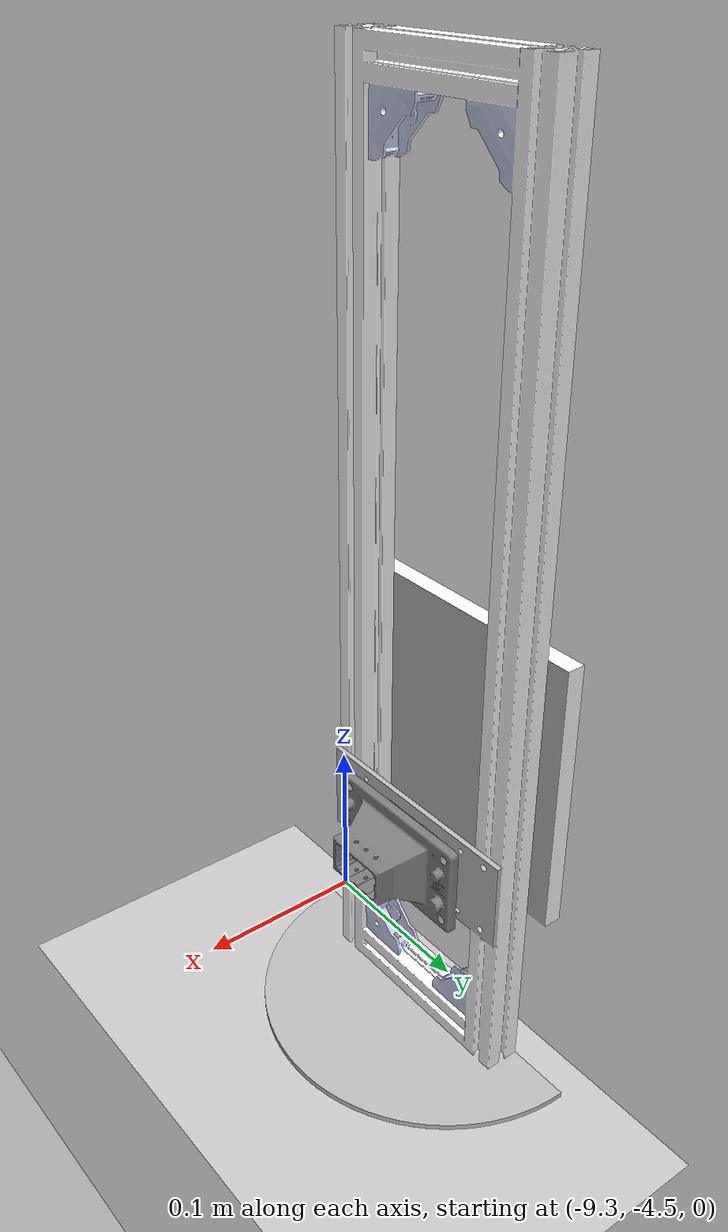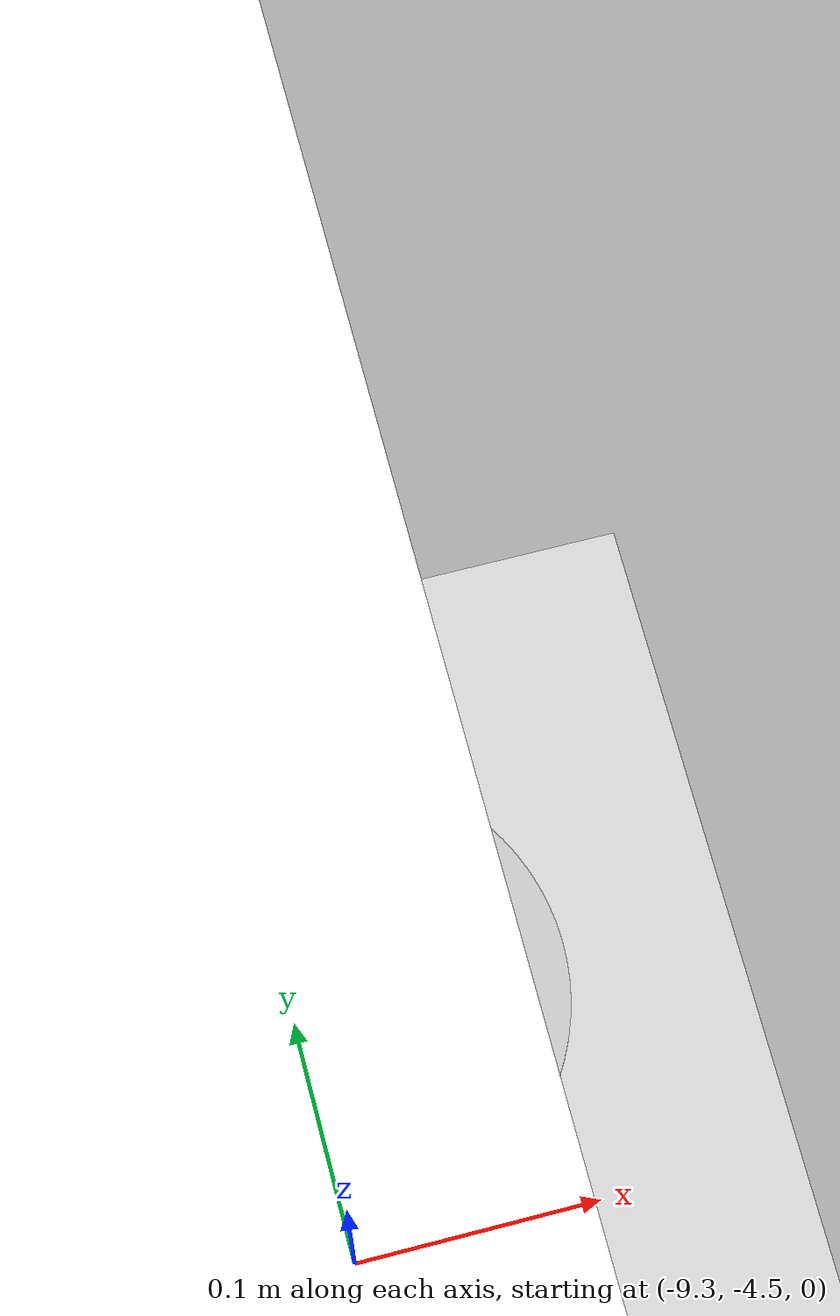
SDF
<?xml version="1.0" ?>
<sdf version="1.4">
	<world name="default">
		<include>
			<uri>model://ground_plane</uri>
		</include>
		<include>
			<uri>model://sun</uri>
		</include>
		<include>
			<uri>model://ar_room</uri>
		</include>
		<model name="power_station">
			<static>1</static>
			<pose>-9.29 -4.41 0 0 0 0 </pose>
			<link name="power_station">
				<collision name="station_collision">
					<geometry>
						<mesh>
							<uri>model://station.stl</uri>
						</mesh>
					</geometry>
					<max_contacts>10</max_contacts>
					<surface>
						<contact>
							<ode>
								<kp>0.0</kp>
								<kd>0.0</kd>
							</ode>
						</contact>
						<friction>
							<ode>
								<mu>0.0</mu>
								<mu2>0.0</mu2>
							</ode>
						</friction>
					</surface>
				</collision>
				<visual name="station_visual">
					<geometry>
						<mesh>
							<uri>model://station.dae</uri>
						</mesh>
					</geometry>
				</visual>
				<velocity_decay>
					<linear>0</linear>
					<angular>0</angular>
				</velocity_decay>
				<self_collide>0</self_collide>
				<kinematic>0</kinematic>
				<gravity>1</gravity>
			</link>
		</model>
		<physics type='ode'>
			<max_step_size>0.01</max_step_size>
			<real_time_factor>1</real_time_factor>
			<real_time_update_rate>100</real_time_update_rate>
			<gravity>0 0 -9.8</gravity>
		</physics>
	</world>
</sdf>

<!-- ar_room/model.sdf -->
<sdf version="1.4">
  <model name="qr_room">
    <link name="link">
      <inertial>
        <mass>15</mass>
        <inertia>
          <ixx>0.0</ixx>
          <ixy>0.0</ixy>
          <ixz>0.0</ixz>
          <iyy>0.0</iyy>
          <iyz>0.0</iyz>
          <izz>0.1</izz>
        </inertia>
      </inertial>
      <collision name="collision">
        <pose>-10 -10 -0.9 0 0 0</pose>
        <geometry>
          <mesh>
            <uri>model://ar_room/meshes/ar.dae</uri>
          </mesh>
        </geometry>
        <surface>
          <contact>
            <ode>
              <kp>1e+05</kp>
              <kd>0</kd>
            </ode>
          </contact>
          <friction>
            <ode>
              <mu>100.0</mu>
              <mu2>50.0</mu2>
            </ode>
          </friction>
        </surface>
      </collision>
      <visual name="visual">
        <pose>-10 -10 -0.9 0 0 0</pose>
        <geometry>
          <mesh>
            <uri>model://ar_room/meshes/ar.dae</uri>
          </mesh>
        </geometry>

      </visual>
    </link>
    <static>1</static>
  </model>
</sdf>
